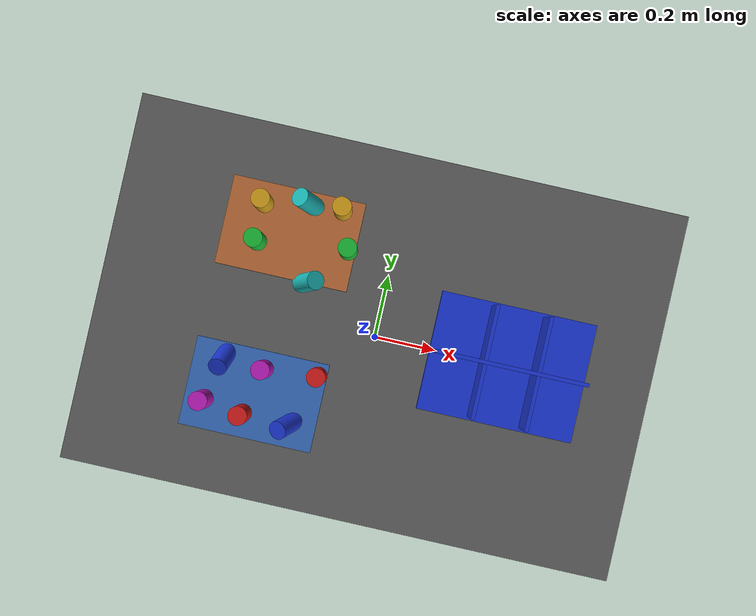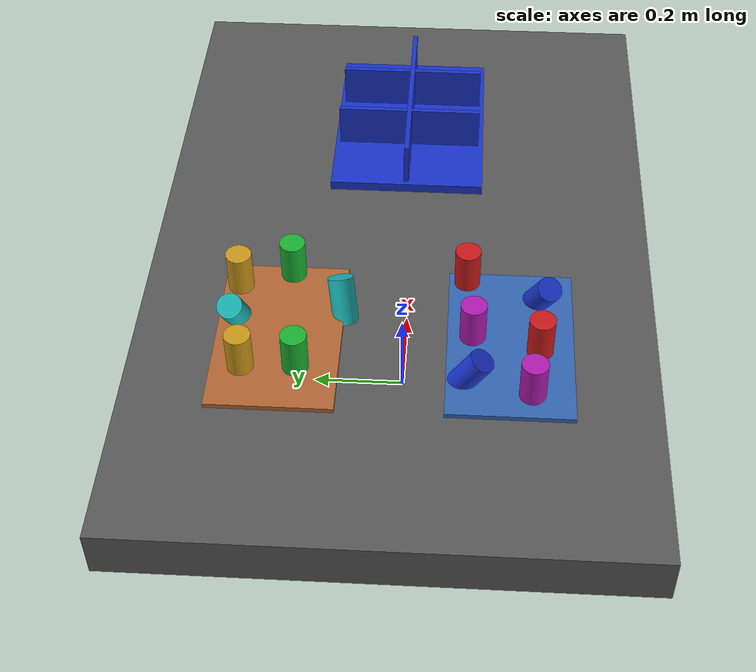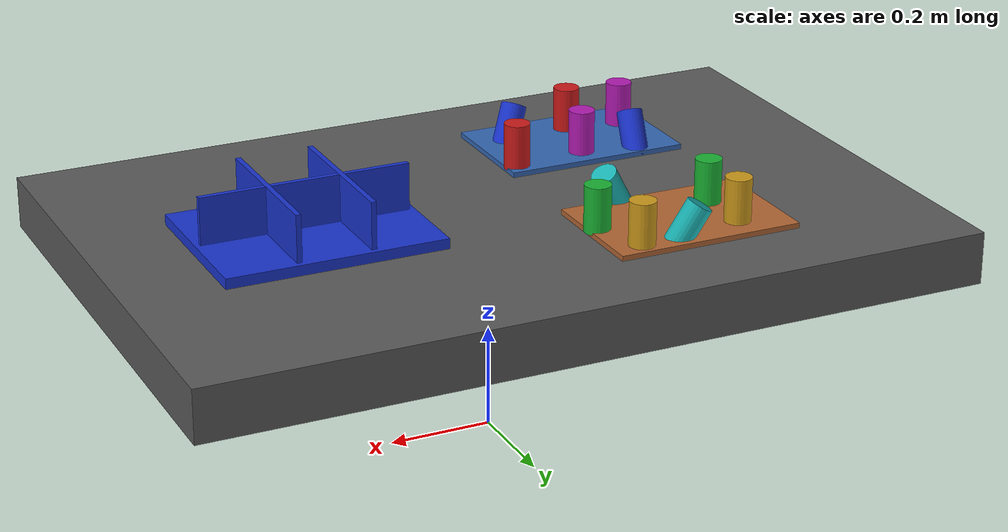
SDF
<?xml version="1.0" ?>
<sdf version="1.9">
  <!-- Standalone M1B scene.  The controller-backed Panda is spawned by the
       existing launch path; this file never alters the frozen M1A cube world. -->
  <world name="industrial_cylinder_v1">
    <physics name="bullet" type="bullet"><max_step_size>0.001</max_step_size><real_time_factor>1.0</real_time_factor></physics>
    <plugin name="gz::sim::systems::Physics" filename="gz-sim-physics-system"><engine><filename>gz-physics-bullet-featherstone-plugin</filename></engine></plugin>
    <plugin name="gz::sim::systems::UserCommands" filename="gz-sim-user-commands-system"/>
    <plugin name="gz::sim::systems::SceneBroadcaster" filename="gz-sim-scene-broadcaster-system"/>
    <plugin name="gz::sim::systems::Sensors" filename="gz-sim-sensors-system"><render_engine>ogre2</render_engine></plugin>
    <gravity>0 0 -9.81</gravity>
    <light type="directional" name="industrial_light"><pose>0 0 5 0 0 0</pose><direction>-0.3 0.2 -0.9</direction><diffuse>0.9 0.9 0.9 1</diffuse></light>
    <model name="industrial_work_table"><static>true</static><link name="link"><pose>0 0 0.4 0 0 0</pose><collision name="collision"><geometry><box><size>1.5 1.0 0.1</size></box></geometry></collision><visual name="visual"><geometry><box><size>1.5 1.0 0.1</size></box></geometry><material><diffuse>0.35 0.35 0.35 1</diffuse></material></visual></link></model>
    <model name="camera_fixture"><static>true</static><link name="camera_rgbd"><pose>-0.80 -0.80 1.40 0 0.77 0.93</pose><sensor name="front_rgbd" type="rgbd_camera"><always_on>1</always_on><update_rate>15</update_rate><topic>/xh/camera/rgbd</topic><camera><horizontal_fov>1.047</horizontal_fov><image><width>640</width><height>480</height><format>R8G8B8</format></image><clip><near>0.1</near><far>4.0</far></clip></camera></sensor></link></model>
    <model name="incoming_zone_a"><static>true</static><link name="link"><pose>-0.28 -0.22 0.455 0 0 0</pose><visual name="visual"><geometry><box><size>0.36 0.24 0.01</size></box></geometry><material><diffuse>0.2 0.4 0.7 1</diffuse></material></visual></link></model>
    <model name="incoming_zone_b"><static>true</static><link name="link"><pose>-0.28 0.22 0.455 0 0 0</pose><visual name="visual"><geometry><box><size>0.36 0.24 0.01</size></box></geometry><material><diffuse>0.7 0.4 0.2 1</diffuse></material></visual></link></model>
    <!-- M1B_RANDOM_PARTS_BEGIN -->
    <model name="cylinder_01"><pose>-0.1236 -0.1351 0.5000 0.0000 0.0000 -1.8973</pose><link name="link"><inertial><mass>0.06</mass></inertial><collision name="collision"><geometry><cylinder><radius>0.025</radius><length>0.09</length></cylinder></geometry></collision><visual name="visual"><geometry><cylinder><radius>0.025</radius><length>0.09</length></cylinder></geometry><material><diffuse>0.800 0.100 0.100 1</diffuse><specular>0.15 0.15 0.15 1</specular></material></visual></link></model>
    <model name="cylinder_02"><pose>-0.1183 0.2078 0.5000 3.1416 0.0000 -0.7709</pose><link name="link"><inertial><mass>0.06</mass></inertial><collision name="collision"><geometry><cylinder><radius>0.025</radius><length>0.09</length></cylinder></geometry></collision><visual name="visual"><geometry><cylinder><radius>0.025</radius><length>0.09</length></cylinder></geometry><material><diffuse>0.100 0.700 0.200 1</diffuse><specular>0.15 0.15 0.15 1</specular></material></visual></link></model>
    <model name="cylinder_03"><pose>-0.3771 -0.1439 0.4800 0.4500 -0.3000 0.4035</pose><link name="link"><inertial><mass>0.06</mass></inertial><collision name="collision"><geometry><cylinder><radius>0.025</radius><length>0.09</length></cylinder></geometry></collision><visual name="visual"><geometry><cylinder><radius>0.025</radius><length>0.09</length></cylinder></geometry><material><diffuse>0.100 0.200 0.800 1</diffuse><specular>0.15 0.15 0.15 1</specular></material></visual></link></model>
    <model name="cylinder_04"><pose>-0.3643 0.2822 0.5000 0.0000 0.0000 -2.9491</pose><link name="link"><inertial><mass>0.06</mass></inertial><collision name="collision"><geometry><cylinder><radius>0.025</radius><length>0.09</length></cylinder></geometry></collision><visual name="visual"><geometry><cylinder><radius>0.025</radius><length>0.09</length></cylinder></geometry><material><diffuse>0.800 0.600 0.100 1</diffuse><specular>0.15 0.15 0.15 1</specular></material></visual></link></model>
    <model name="cylinder_05"><pose>-0.2673 -0.1484 0.5000 3.1416 0.0000 0.7089</pose><link name="link"><inertial><mass>0.06</mass></inertial><collision name="collision"><geometry><cylinder><radius>0.025</radius><length>0.09</length></cylinder></geometry></collision><visual name="visual"><geometry><cylinder><radius>0.025</radius><length>0.09</length></cylinder></geometry><material><diffuse>0.700 0.100 0.700 1</diffuse><specular>0.15 0.15 0.15 1</specular></material></visual></link></model>
    <model name="cylinder_06"><pose>-0.2033 0.1029 0.4800 0.4500 -0.3000 2.3994</pose><link name="link"><inertial><mass>0.06</mass></inertial><collision name="collision"><geometry><cylinder><radius>0.025</radius><length>0.09</length></cylinder></geometry></collision><visual name="visual"><geometry><cylinder><radius>0.025</radius><length>0.09</length></cylinder></geometry><material><diffuse>0.100 0.700 0.700 1</diffuse><specular>0.15 0.15 0.15 1</specular></material></visual></link></model>
    <model name="cylinder_07"><pose>-0.2981 -0.2757 0.5000 0.0000 0.0000 -2.5459</pose><link name="link"><inertial><mass>0.06</mass></inertial><collision name="collision"><geometry><cylinder><radius>0.025</radius><length>0.09</length></cylinder></geometry></collision><visual name="visual"><geometry><cylinder><radius>0.025</radius><length>0.09</length></cylinder></geometry><material><diffuse>0.800 0.100 0.100 1</diffuse><specular>0.15 0.15 0.15 1</specular></material></visual></link></model>
    <model name="cylinder_08"><pose>-0.3603 0.1796 0.5000 3.1416 0.0000 2.0732</pose><link name="link"><inertial><mass>0.06</mass></inertial><collision name="collision"><geometry><cylinder><radius>0.025</radius><length>0.09</length></cylinder></geometry></collision><visual name="visual"><geometry><cylinder><radius>0.025</radius><length>0.09</length></cylinder></geometry><material><diffuse>0.100 0.700 0.200 1</diffuse><specular>0.15 0.15 0.15 1</specular></material></visual></link></model>
    <model name="cylinder_09"><pose>-0.1743 -0.2783 0.4800 0.4500 -0.3000 -0.3541</pose><link name="link"><inertial><mass>0.06</mass></inertial><collision name="collision"><geometry><cylinder><radius>0.025</radius><length>0.09</length></cylinder></geometry></collision><visual name="visual"><geometry><cylinder><radius>0.025</radius><length>0.09</length></cylinder></geometry><material><diffuse>0.100 0.200 0.800 1</diffuse><specular>0.15 0.15 0.15 1</specular></material></visual></link></model>
    <model name="cylinder_10"><pose>-0.1554 0.3081 0.5000 0.0000 0.0000 1.1816</pose><link name="link"><inertial><mass>0.06</mass></inertial><collision name="collision"><geometry><cylinder><radius>0.025</radius><length>0.09</length></cylinder></geometry></collision><visual name="visual"><geometry><cylinder><radius>0.025</radius><length>0.09</length></cylinder></geometry><material><diffuse>0.800 0.600 0.100 1</diffuse><specular>0.15 0.15 0.15 1</specular></material></visual></link></model>
    <model name="cylinder_11"><pose>-0.4059 -0.2606 0.5000 3.1416 0.0000 2.8302</pose><link name="link"><inertial><mass>0.06</mass></inertial><collision name="collision"><geometry><cylinder><radius>0.025</radius><length>0.09</length></cylinder></geometry></collision><visual name="visual"><geometry><cylinder><radius>0.025</radius><length>0.09</length></cylinder></geometry><material><diffuse>0.700 0.100 0.700 1</diffuse><specular>0.15 0.15 0.15 1</specular></material></visual></link></model>
    <model name="cylinder_12"><pose>-0.2463 0.3069 0.4800 0.4500 -0.3000 -1.2289</pose><link name="link"><inertial><mass>0.06</mass></inertial><collision name="collision"><geometry><cylinder><radius>0.025</radius><length>0.09</length></cylinder></geometry></collision><visual name="visual"><geometry><cylinder><radius>0.025</radius><length>0.09</length></cylinder></geometry><material><diffuse>0.100 0.700 0.700 1</diffuse><specular>0.15 0.15 0.15 1</specular></material></visual></link></model>
    <!-- M1B_RANDOM_PARTS_END -->
    <model name="blue_partition_bin"><static>true</static><pose>0.36 0 0.45 0 0 0</pose><link name="link"><collision name="floor"><pose>0 0 0.01 0 0 0</pose><geometry><box><size>0.42 0.32 0.02</size></box></geometry></collision><visual name="floor_visual"><pose>0 0 0.01 0 0 0</pose><geometry><box><size>0.42 0.32 0.02</size></box></geometry><material><diffuse>0.1 0.2 0.8 1</diffuse></material></visual><visual name="row_divider"><pose>0 0 0.06 0 0 0</pose><geometry><box><size>0.40 0.01 0.10</size></box></geometry><material><diffuse>0.1 0.2 0.8 1</diffuse></material></visual><visual name="col_divider_a"><pose>-0.07 0 0.06 0 0 0</pose><geometry><box><size>0.01 0.30 0.10</size></box></geometry><material><diffuse>0.1 0.2 0.8 1</diffuse></material></visual><visual name="col_divider_b"><pose>0.07 0 0.06 0 0 0</pose><geometry><box><size>0.01 0.30 0.10</size></box></geometry><material><diffuse>0.1 0.2 0.8 1</diffuse></material></visual></link></model>
    <!-- Reserved only: second table, bin transport corridor, stackable-bin
         collision volume, and second arm mounting namespace. -->
  </world>
</sdf>
